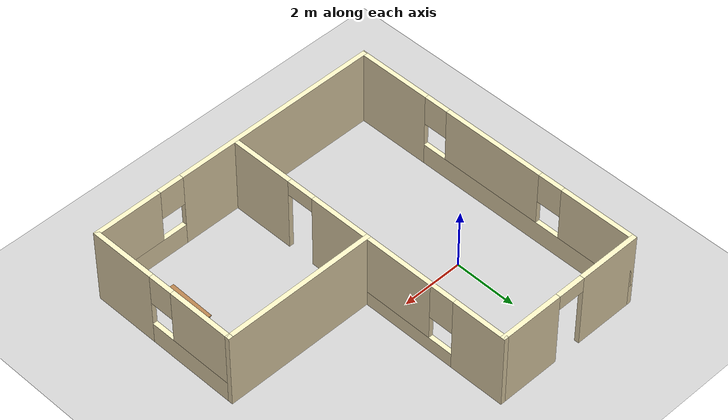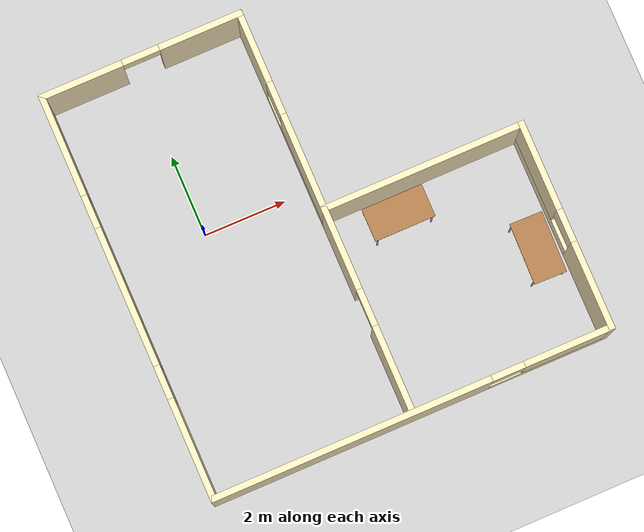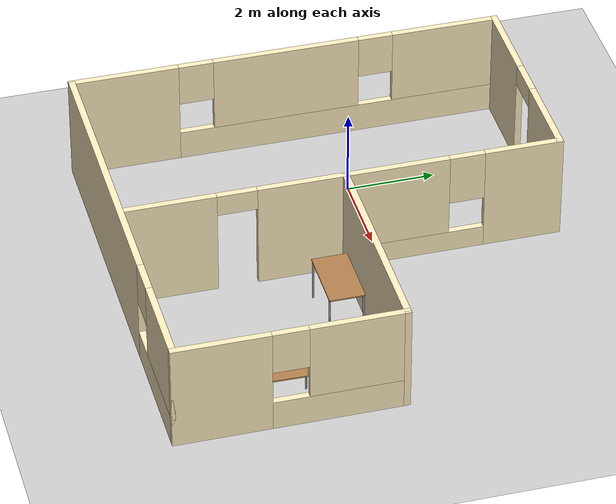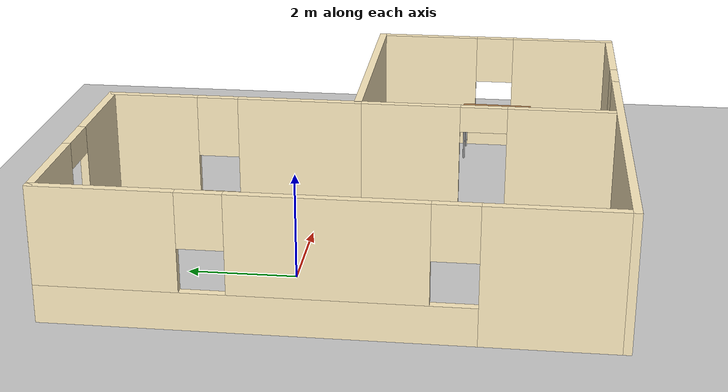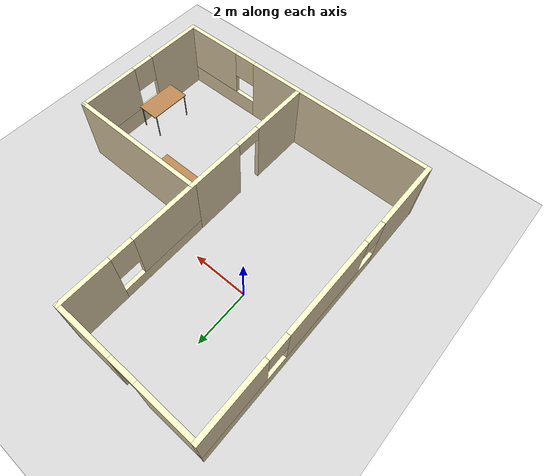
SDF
<sdf version="1.6">
 <world name="default">
  <model name="ground_plane">
   <static>1</static>
   <link name="link">
    <collision name="collision">
     <geometry><plane><normal>0 0 1</normal><size>100 100</size></plane></geometry>
     <surface>
      <contact><collide_bitmask>65535</collide_bitmask></contact>
      <friction><ode><mu>100</mu><mu2>50</mu2></ode></friction>
     </surface>
    </collision>
    <visual name="visual">
     <cast_shadows>0</cast_shadows>
     <geometry><plane><normal>0 0 1</normal><size>100 100</size></plane></geometry>
     <material>
      <script><uri>file://media/materials/scripts/gazebo.material</uri><name>Gazebo/Grey</name></script>
     </material>
    </visual>
   </link>
  </model>
  <model name="mybuilding">
   <pose>2.65738 -0.872216 0 0 -0 0</pose>
   <link name="Wall_62">
    <pose>-4.85 0 0 0 -0 1.5708</pose>
    <visual name="Wall_62_Visual_0">
     <pose>-3.74581 0 1.25 0 -0 0</pose>
     <geometry><box><size>2.50837 0.15 2.5</size></box></geometry>
     <material>
      <script><uri>file://media/materials/scripts/gazebo.material</uri><name>Gazebo/Grey</name></script>
      <ambient>1 0.929412 0.752941 1</ambient>
     </material>
     <meta><layer>0</layer></meta>
    </visual>
    <collision name="Wall_62_Collision_0">
     <geometry><box><size>2.50837 0.15 2.5</size></box></geometry>
     <pose>-3.74581 0 1.25 0 -0 0</pose>
    </collision>
    <visual name="Wall_62_Visual_1">
     <pose>1.25419 0 0.35 0 -0 0</pose>
     <geometry><box><size>7.49163 0.15 0.7</size></box></geometry>
     <material>
      <script><uri>file://media/materials/scripts/gazebo.material</uri><name>Gazebo/Grey</name></script>
      <ambient>1 0.929412 0.752941 1</ambient>
     </material>
     <meta><layer>0</layer></meta>
    </visual>
    <collision name="Wall_62_Collision_1">
     <geometry><box><size>7.49163 0.15 0.7</size></box></geometry>
     <pose>1.25419 0 0.35 0 -0 0</pose>
    </collision>
    <visual name="Wall_62_Visual_2">
     <pose>-0.000724 0 1.6 0 -0 0</pose>
     <geometry><box><size>3.3818 0.15 1.8</size></box></geometry>
     <material>
      <script><uri>file://media/materials/scripts/gazebo.material</uri><name>Gazebo/Grey</name></script>
      <ambient>1 0.929412 0.752941 1</ambient>
     </material>
     <meta><layer>0</layer></meta>
    </visual>
    <collision name="Wall_62_Collision_2">
     <geometry><box><size>3.3818 0.15 1.8</size></box></geometry>
     <pose>-0.000724 0 1.6 0 -0 0</pose>
    </collision>
    <visual name="Wall_62_Visual_3">
     <pose>3.74509 0 1.6 0 -0 0</pose>
     <geometry><box><size>2.50982 0.15 1.8</size></box></geometry>
     <material>
      <script><uri>file://media/materials/scripts/gazebo.material</uri><name>Gazebo/Grey</name></script>
      <ambient>1 0.929412 0.752941 1</ambient>
     </material>
     <meta><layer>0</layer></meta>
    </visual>
    <collision name="Wall_62_Collision_3">
     <geometry><box><size>2.50982 0.15 1.8</size></box></geometry>
     <pose>3.74509 0 1.6 0 -0 0</pose>
    </collision>
    <visual name="Wall_62_Visual_4">
     <pose>-2.09163 0 2 0 -0 0</pose>
     <geometry><box><size>0.8 0.15 1</size></box></geometry>
     <material>
      <script><uri>file://media/materials/scripts/gazebo.material</uri><name>Gazebo/Grey</name></script>
      <ambient>1 0.929412 0.752941 1</ambient>
     </material>
     <meta><layer>0</layer></meta>
    </visual>
    <collision name="Wall_62_Collision_4">
     <geometry><box><size>0.8 0.15 1</size></box></geometry>
     <pose>-2.09163 0 2 0 -0 0</pose>
    </collision>
    <visual name="Wall_62_Visual_5">
     <pose>2.09018 0 2 0 -0 0</pose>
     <geometry><box><size>0.8 0.15 1</size></box></geometry>
     <material>
      <script><uri>file://media/materials/scripts/gazebo.material</uri><name>Gazebo/Grey</name></script>
      <ambient>1 0.929412 0.752941 1</ambient>
     </material>
     <meta><layer>0</layer></meta>
    </visual>
    <collision name="Wall_62_Collision_5">
     <geometry><box><size>0.8 0.15 1</size></box></geometry>
     <pose>2.09018 0 2 0 -0 0</pose>
    </collision>
   </link>
   <link name="Wall_64">
    <pose>-2.425 4.925 0 0 -0 0</pose>
    <visual name="Wall_64_Visual_0">
     <pose>-1.47838 0 1.25 0 -0 0</pose>
     <geometry><box><size>2.04324 0.15 2.5</size></box></geometry>
     <material>
      <script><uri>file://media/materials/scripts/gazebo.material</uri><name>Gazebo/Grey</name></script>
      <ambient>1 0.929412 0.752941 1</ambient>
     </material>
     <meta><layer>0</layer></meta>
    </visual>
    <collision name="Wall_64_Collision_0">
     <geometry><box><size>2.04324 0.15 2.5</size></box></geometry>
     <pose>-1.47838 0 1.25 0 -0 0</pose>
    </collision>
    <visual name="Wall_64_Visual_1">
     <pose>1.47162 0 1.25 0 -0 0</pose>
     <geometry><box><size>2.05676 0.15 2.5</size></box></geometry>
     <material>
      <script><uri>file://media/materials/scripts/gazebo.material</uri><name>Gazebo/Grey</name></script>
      <ambient>1 0.929412 0.752941 1</ambient>
     </material>
     <meta><layer>0</layer></meta>
    </visual>
    <collision name="Wall_64_Collision_1">
     <geometry><box><size>2.05676 0.15 2.5</size></box></geometry>
     <pose>1.47162 0 1.25 0 -0 0</pose>
    </collision>
    <visual name="Wall_64_Visual_2">
     <pose>-0.006757 0 2.25 0 -0 0</pose>
     <geometry><box><size>0.9 0.15 0.5</size></box></geometry>
     <material>
      <script><uri>file://media/materials/scripts/gazebo.material</uri><name>Gazebo/Grey</name></script>
      <ambient>1 0.929412 0.752941 1</ambient>
     </material>
     <meta><layer>0</layer></meta>
    </visual>
    <collision name="Wall_64_Collision_2">
     <geometry><box><size>0.9 0.15 0.5</size></box></geometry>
     <pose>-0.006757 0 2.25 0 -0 0</pose>
    </collision>
   </link>
   <link name="Wall_66">
    <pose>0 2.5 0 0 0 -1.5708</pose>
    <visual name="Wall_66_Visual_0">
     <pose>-1.60752 0 1.25 0 -0 0</pose>
     <geometry><box><size>1.78496 0.15 2.5</size></box></geometry>
     <material>
      <script><uri>file://media/materials/scripts/gazebo.material</uri><name>Gazebo/Grey</name></script>
      <ambient>1 0.929412 0.752941 1</ambient>
     </material>
     <meta><layer>0</layer></meta>
    </visual>
    <collision name="Wall_66_Collision_0">
     <geometry><box><size>1.78496 0.15 2.5</size></box></geometry>
     <pose>-1.60752 0 1.25 0 -0 0</pose>
    </collision>
    <visual name="Wall_66_Visual_1">
     <pose>0.892479 0 0.25 0 -0 0</pose>
     <geometry><box><size>3.21504 0.15 0.5</size></box></geometry>
     <material>
      <script><uri>file://media/materials/scripts/gazebo.material</uri><name>Gazebo/Grey</name></script>
      <ambient>1 0.929412 0.752941 1</ambient>
     </material>
     <meta><layer>0</layer></meta>
    </visual>
    <collision name="Wall_66_Collision_1">
     <geometry><box><size>3.21504 0.15 0.5</size></box></geometry>
     <pose>0.892479 0 0.25 0 -0 0</pose>
    </collision>
    <visual name="Wall_66_Visual_2">
     <pose>1.29248 0 1.5 0 -0 0</pose>
     <geometry><box><size>2.41504 0.15 2</size></box></geometry>
     <material>
      <script><uri>file://media/materials/scripts/gazebo.material</uri><name>Gazebo/Grey</name></script>
      <ambient>1 0.929412 0.752941 1</ambient>
     </material>
     <meta><layer>0</layer></meta>
    </visual>
    <collision name="Wall_66_Collision_2">
     <geometry><box><size>2.41504 0.15 2</size></box></geometry>
     <pose>1.29248 0 1.5 0 -0 0</pose>
    </collision>
    <visual name="Wall_66_Visual_3">
     <pose>-0.315041 0 1.9 0 -0 0</pose>
     <geometry><box><size>0.8 0.15 1.2</size></box></geometry>
     <material>
      <script><uri>file://media/materials/scripts/gazebo.material</uri><name>Gazebo/Grey</name></script>
      <ambient>1 0.929412 0.752941 1</ambient>
     </material>
     <meta><layer>0</layer></meta>
    </visual>
    <collision name="Wall_66_Collision_3">
     <geometry><box><size>0.8 0.15 1.2</size></box></geometry>
     <pose>-0.315041 0 1.9 0 -0 0</pose>
    </collision>
   </link>
   <link name="Wall_71">
    <collision name="Wall_71_Collision">
     <geometry><box><size>5 0.15 2.5</size></box></geometry>
     <pose>0 0 1.25 0 -0 0</pose>
    </collision>
    <visual name="Wall_71_Visual">
     <pose>0 0 1.25 0 -0 0</pose>
     <geometry><box><size>5 0.15 2.5</size></box></geometry>
     <material>
      <script><uri>file://media/materials/scripts/gazebo.material</uri><name>Gazebo/Grey</name></script>
      <ambient>1 0.929412 0.752941 1</ambient>
     </material>
     <meta><layer>0</layer></meta>
    </visual>
    <pose>2.425 0.075 0 0 -0 0</pose>
   </link>
   <link name="Wall_74">
    <pose>4.85 -2.425 0 0 -0 1.5708</pose>
    <visual name="Wall_74_Visual_0">
     <pose>-1.49177 0 1.25 0 -0 0</pose>
     <geometry><box><size>2.16647 0.15 2.5</size></box></geometry>
     <material>
      <script><uri>file://media/materials/scripts/gazebo.material</uri><name>Gazebo/Grey</name></script>
      <ambient>1 0.929412 0.752941 1</ambient>
     </material>
     <meta><layer>0</layer></meta>
    </visual>
    <collision name="Wall_74_Collision_0">
     <geometry><box><size>2.16647 0.15 2.5</size></box></geometry>
     <pose>-1.49177 0 1.25 0 -0 0</pose>
    </collision>
    <visual name="Wall_74_Visual_1">
     <pose>1.08323 0 0.35 0 -0 0</pose>
     <geometry><box><size>2.98353 0.15 0.7</size></box></geometry>
     <material>
      <script><uri>file://media/materials/scripts/gazebo.material</uri><name>Gazebo/Grey</name></script>
      <ambient>1 0.929412 0.752941 1</ambient>
     </material>
     <meta><layer>0</layer></meta>
    </visual>
    <collision name="Wall_74_Collision_1">
     <geometry><box><size>2.98353 0.15 0.7</size></box></geometry>
     <pose>1.08323 0 0.35 0 -0 0</pose>
    </collision>
    <visual name="Wall_74_Visual_2">
     <pose>1.48323 0 1.6 0 -0 0</pose>
     <geometry><box><size>2.18353 0.15 1.8</size></box></geometry>
     <material>
      <script><uri>file://media/materials/scripts/gazebo.material</uri><name>Gazebo/Grey</name></script>
      <ambient>1 0.929412 0.752941 1</ambient>
     </material>
     <meta><layer>0</layer></meta>
    </visual>
    <collision name="Wall_74_Collision_2">
     <geometry><box><size>2.18353 0.15 1.8</size></box></geometry>
     <pose>1.48323 0 1.6 0 -0 0</pose>
    </collision>
    <visual name="Wall_74_Visual_3">
     <pose>-0.008534 0 2 0 -0 0</pose>
     <geometry><box><size>0.8 0.15 1</size></box></geometry>
     <material>
      <script><uri>file://media/materials/scripts/gazebo.material</uri><name>Gazebo/Grey</name></script>
      <ambient>1 0.929412 0.752941 1</ambient>
     </material>
     <meta><layer>0</layer></meta>
    </visual>
    <collision name="Wall_74_Collision_3">
     <geometry><box><size>0.8 0.15 1</size></box></geometry>
     <pose>-0.008534 0 2 0 -0 0</pose>
    </collision>
   </link>
   <link name="Wall_76">
    <pose>0 -4.925 0 0 -0 0</pose>
    <visual name="Wall_76_Visual_0">
     <pose>-1.49862 0 1.25 0 -0 0</pose>
     <geometry><box><size>6.85275 0.15 2.5</size></box></geometry>
     <material>
      <script><uri>file://media/materials/scripts/gazebo.material</uri><name>Gazebo/Grey</name></script>
      <ambient>1 0.929412 0.752941 1</ambient>
     </material>
     <meta><layer>0</layer></meta>
    </visual>
    <collision name="Wall_76_Collision_0">
     <geometry><box><size>6.85275 0.15 2.5</size></box></geometry>
     <pose>-1.49862 0 1.25 0 -0 0</pose>
    </collision>
    <visual name="Wall_76_Visual_1">
     <pose>3.42638 0 0.35 0 -0 0</pose>
     <geometry><box><size>2.99725 0.15 0.7</size></box></geometry>
     <material>
      <script><uri>file://media/materials/scripts/gazebo.material</uri><name>Gazebo/Grey</name></script>
      <ambient>1 0.929412 0.752941 1</ambient>
     </material>
     <meta><layer>0</layer></meta>
    </visual>
    <collision name="Wall_76_Collision_1">
     <geometry><box><size>2.99725 0.15 0.7</size></box></geometry>
     <pose>3.42638 0 0.35 0 -0 0</pose>
    </collision>
    <visual name="Wall_76_Visual_2">
     <pose>3.82638 0 1.6 0 -0 0</pose>
     <geometry><box><size>2.19725 0.15 1.8</size></box></geometry>
     <material>
      <script><uri>file://media/materials/scripts/gazebo.material</uri><name>Gazebo/Grey</name></script>
      <ambient>1 0.929412 0.752941 1</ambient>
     </material>
     <meta><layer>0</layer></meta>
    </visual>
    <collision name="Wall_76_Collision_2">
     <geometry><box><size>2.19725 0.15 1.8</size></box></geometry>
     <pose>3.82638 0 1.6 0 -0 0</pose>
    </collision>
    <visual name="Wall_76_Visual_3">
     <pose>2.32775 0 2 0 -0 0</pose>
     <geometry><box><size>0.8 0.15 1</size></box></geometry>
     <material>
      <script><uri>file://media/materials/scripts/gazebo.material</uri><name>Gazebo/Grey</name></script>
      <ambient>1 0.929412 0.752941 1</ambient>
     </material>
     <meta><layer>0</layer></meta>
    </visual>
    <collision name="Wall_76_Collision_3">
     <geometry><box><size>0.8 0.15 1</size></box></geometry>
     <pose>2.32775 0 2 0 -0 0</pose>
    </collision>
   </link>
   <link name="Wall_78">
    <pose>0 -2.35 0 0 0 -1.5708</pose>
    <visual name="Wall_78_Visual_0">
     <pose>-1.47268 0 1.25 0 -0 0</pose>
     <geometry><box><size>2.05463 0.15 2.5</size></box></geometry>
     <material>
      <script><uri>file://media/materials/scripts/gazebo.material</uri><name>Gazebo/Grey</name></script>
      <ambient>1 0.929412 0.752941 1</ambient>
     </material>
     <meta><layer>0</layer></meta>
    </visual>
    <collision name="Wall_78_Collision_0">
     <geometry><box><size>2.05463 0.15 2.5</size></box></geometry>
     <pose>-1.47268 0 1.25 0 -0 0</pose>
    </collision>
    <visual name="Wall_78_Visual_1">
     <pose>1.47732 0 1.25 0 -0 0</pose>
     <geometry><box><size>2.04537 0.15 2.5</size></box></geometry>
     <material>
      <script><uri>file://media/materials/scripts/gazebo.material</uri><name>Gazebo/Grey</name></script>
      <ambient>1 0.929412 0.752941 1</ambient>
     </material>
     <meta><layer>0</layer></meta>
    </visual>
    <collision name="Wall_78_Collision_1">
     <geometry><box><size>2.04537 0.15 2.5</size></box></geometry>
     <pose>1.47732 0 1.25 0 -0 0</pose>
    </collision>
    <visual name="Wall_78_Visual_2">
     <pose>0.004632 0 2.25 0 -0 0</pose>
     <geometry><box><size>0.9 0.15 0.5</size></box></geometry>
     <material>
      <script><uri>file://media/materials/scripts/gazebo.material</uri><name>Gazebo/Grey</name></script>
      <ambient>1 0.929412 0.752941 1</ambient>
     </material>
     <meta><layer>0</layer></meta>
    </visual>
    <collision name="Wall_78_Collision_2">
     <geometry><box><size>0.9 0.15 0.5</size></box></geometry>
     <pose>0.004632 0 2.25 0 -0 0</pose>
    </collision>
   </link>
   <static>1</static>
  </model>
  <model name="table">
   <static>1</static>
   <link name="link">
    <collision name="surface">
     <pose>0 0 1 0 -0 0</pose>
     <geometry><box><size>1.5 0.8 0.03</size></box></geometry>
     <surface><friction><ode><mu>0.6</mu><mu2>0.6</mu2></ode></friction></surface>
    </collision>
    <visual name="visual1">
     <pose>0 0 1 0 -0 0</pose>
     <geometry><box><size>1.5 0.8 0.03</size></box></geometry>
     <material>
      <script><uri>file://media/materials/scripts/gazebo.material</uri><name>Gazebo/Wood</name></script>
     </material>
    </visual>
    <collision name="front_left_leg">
     <pose>0.68 0.38 0.5 0 -0 0</pose>
     <geometry><cylinder><radius>0.02</radius><length>1</length></cylinder></geometry>
    </collision>
    <visual name="front_left_leg">
     <pose>0.68 0.38 0.5 0 -0 0</pose>
     <geometry><cylinder><radius>0.02</radius><length>1</length></cylinder></geometry>
     <material>
      <script><uri>file://media/materials/scripts/gazebo.material</uri><name>Gazebo/Grey</name></script>
     </material>
    </visual>
    <collision name="front_right_leg">
     <pose>0.68 -0.38 0.5 0 -0 0</pose>
     <geometry><cylinder><radius>0.02</radius><length>1</length></cylinder></geometry>
    </collision>
    <visual name="front_right_leg">
     <pose>0.68 -0.38 0.5 0 -0 0</pose>
     <geometry><cylinder><radius>0.02</radius><length>1</length></cylinder></geometry>
     <material>
      <script><uri>file://media/materials/scripts/gazebo.material</uri><name>Gazebo/Grey</name></script>
     </material>
    </visual>
    <collision name="back_right_leg">
     <pose>-0.68 -0.38 0.5 0 -0 0</pose>
     <geometry><cylinder><radius>0.02</radius><length>1</length></cylinder></geometry>
    </collision>
    <visual name="back_right_leg">
     <pose>-0.68 -0.38 0.5 0 -0 0</pose>
     <geometry><cylinder><radius>0.02</radius><length>1</length></cylinder></geometry>
     <material>
      <script><uri>file://media/materials/scripts/gazebo.material</uri><name>Gazebo/Grey</name></script>
     </material>
    </visual>
    <collision name="back_left_leg">
     <pose>-0.68 0.38 0.5 0 -0 0</pose>
     <geometry><cylinder><radius>0.02</radius><length>1</length></cylinder></geometry>
    </collision>
    <visual name="back_left_leg">
     <pose>-0.68 0.38 0.5 0 -0 0</pose>
     <geometry><cylinder><radius>0.02</radius><length>1</length></cylinder></geometry>
     <material>
      <script><uri>file://media/materials/scripts/gazebo.material</uri><name>Gazebo/Grey</name></script>
     </material>
    </visual>
   </link>
   <pose>4.2545 -1.39252 0 0 -0 0</pose>
  </model>
  <model name="table_clone">
   <static>1</static>
   <link name="link">
    <collision name="surface">
     <pose>0 0 1 0 -0 0</pose>
     <geometry><box><size>1.5 0.8 0.03</size></box></geometry>
     <surface><friction><ode><mu>0.6</mu><mu2>0.6</mu2></ode></friction></surface>
    </collision>
    <visual name="visual1">
     <pose>0 0 1 0 -0 0</pose>
     <geometry><box><size>1.5 0.8 0.03</size></box></geometry>
     <material>
      <script><uri>file://media/materials/scripts/gazebo.material</uri><name>Gazebo/Wood</name></script>
     </material>
    </visual>
    <collision name="front_left_leg">
     <pose>0.68 0.38 0.5 0 -0 0</pose>
     <geometry><cylinder><radius>0.02</radius><length>1</length></cylinder></geometry>
    </collision>
    <visual name="front_left_leg">
     <pose>0.68 0.38 0.5 0 -0 0</pose>
     <geometry><cylinder><radius>0.02</radius><length>1</length></cylinder></geometry>
     <material>
      <script><uri>file://media/materials/scripts/gazebo.material</uri><name>Gazebo/Grey</name></script>
     </material>
    </visual>
    <collision name="front_right_leg">
     <pose>0.68 -0.38 0.5 0 -0 0</pose>
     <geometry><cylinder><radius>0.02</radius><length>1</length></cylinder></geometry>
    </collision>
    <visual name="front_right_leg">
     <pose>0.68 -0.38 0.5 0 -0 0</pose>
     <geometry><cylinder><radius>0.02</radius><length>1</length></cylinder></geometry>
     <material>
      <script><uri>file://media/materials/scripts/gazebo.material</uri><name>Gazebo/Grey</name></script>
     </material>
    </visual>
    <collision name="back_right_leg">
     <pose>-0.68 -0.38 0.5 0 -0 0</pose>
     <geometry><cylinder><radius>0.02</radius><length>1</length></cylinder></geometry>
    </collision>
    <visual name="back_right_leg">
     <pose>-0.68 -0.38 0.5 0 -0 0</pose>
     <geometry><cylinder><radius>0.02</radius><length>1</length></cylinder></geometry>
     <material>
      <script><uri>file://media/materials/scripts/gazebo.material</uri><name>Gazebo/Grey</name></script>
     </material>
    </visual>
    <collision name="back_left_leg">
     <pose>-0.68 0.38 0.5 0 -0 0</pose>
     <geometry><cylinder><radius>0.02</radius><length>1</length></cylinder></geometry>
    </collision>
    <visual name="back_left_leg">
     <pose>-0.68 0.38 0.5 0 -0 0</pose>
     <geometry><cylinder><radius>0.02</radius><length>1</length></cylinder></geometry>
     <material>
      <script><uri>file://media/materials/scripts/gazebo.material</uri><name>Gazebo/Grey</name></script>
     </material>
    </visual>
   </link>
   <pose>6.87041 -3.39999 0 0 -0 1.55</pose>
  </model>
 </world>
</sdf>
